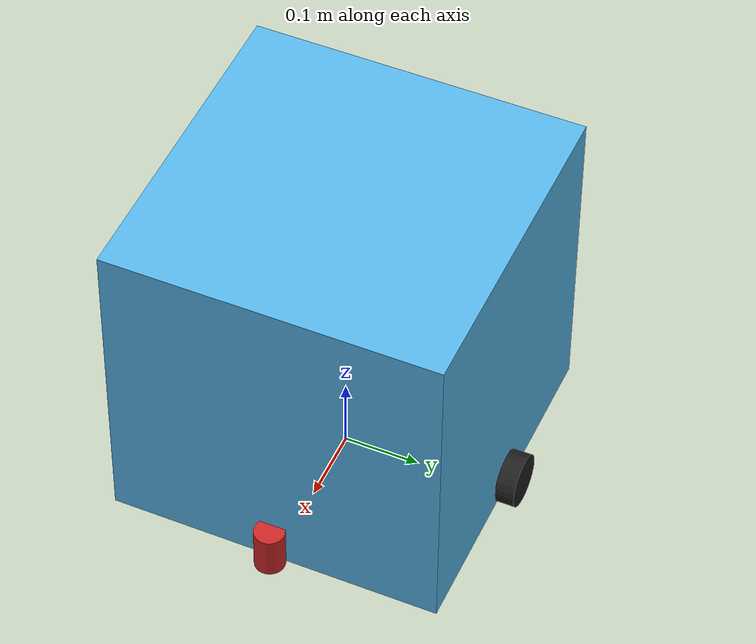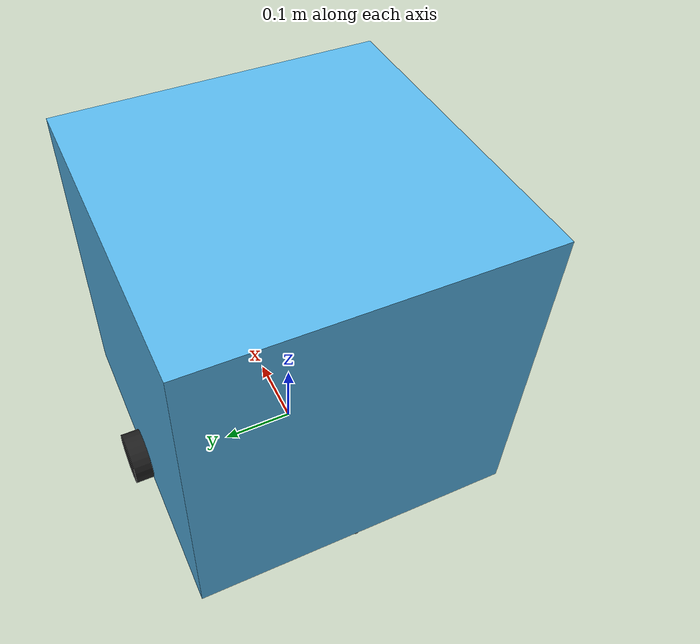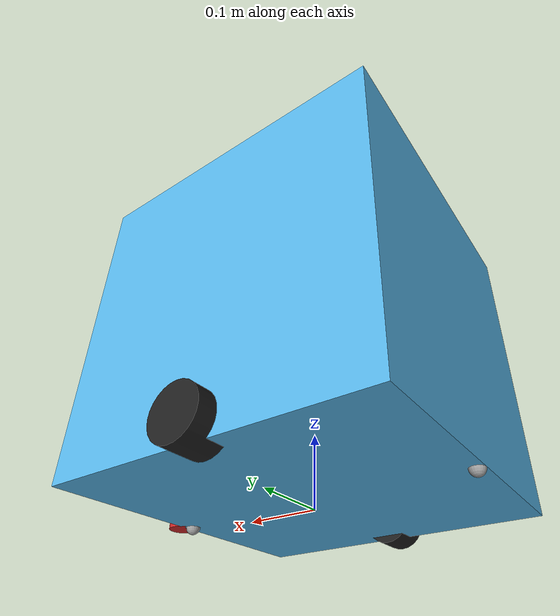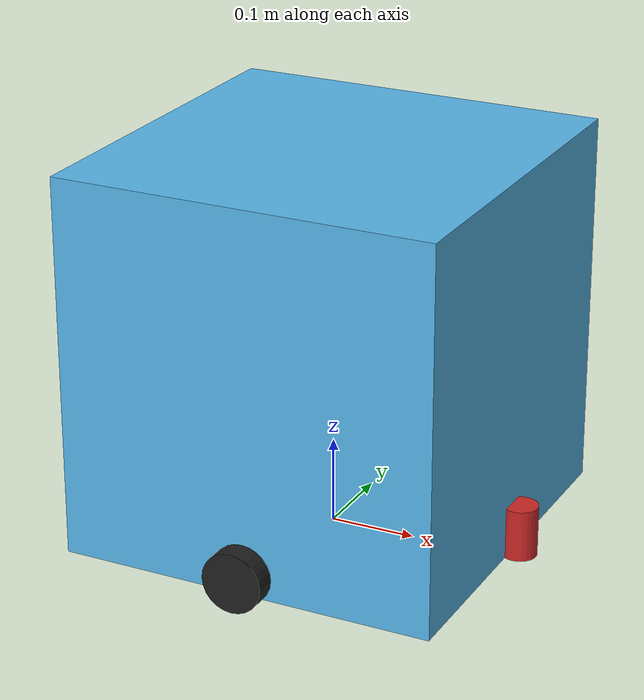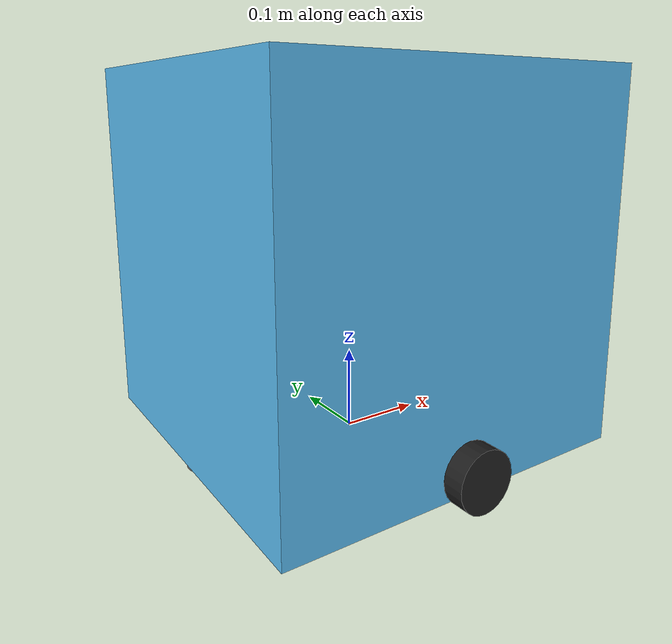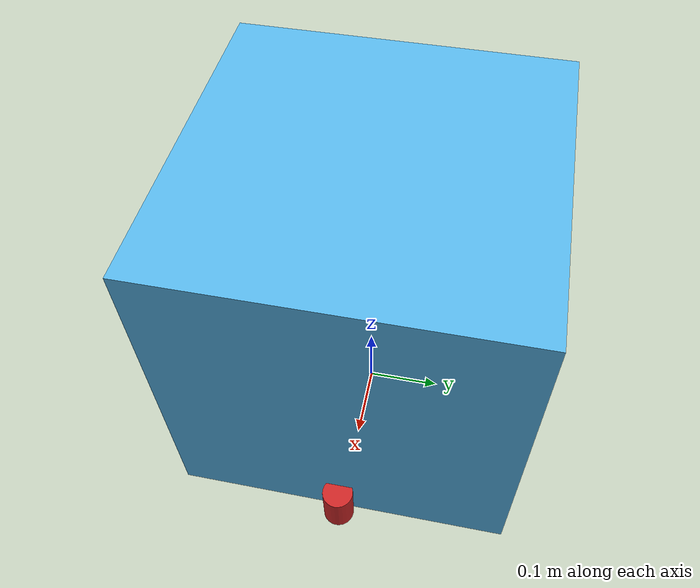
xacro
<?xml version="1.0" ?>
<robot name="simple_diff_drive" xmlns:xacro="http://ros.org/wiki/xacro">

 <xacro:include filename="$(find nhk2021_simulator)/urdf/body.urdf.xacro" />
 <xacro:include filename="$(find nhk2021_simulator)/urdf/wheel.urdf.xacro" />

 <xacro:include filename="$(find nhk2021_simulator)/urdf/lidar.urdf.xacro" />
 <xacro:include filename="$(find nhk2021_simulator)/urdf/imu.urdf.xacro" />

  <gazebo>
    <plugin name="gazebo_ros_control" filename="libgazebo_ros_control.so">
      <robotNamespace>/simple_diff_drive</robotNamespace>
      <robotSimType>gazebo_ros_control/DefaultRobotHWSim</robotSimType>
      <legacyModeNS>true</legacyModeNS>
    </plugin>
  </gazebo>

 <xacro:wheel rl="r" parent="base_link" />
 <xacro:wheel rl="l" parent="base_link" />

 <xacro:laser_macro prefix="rplidar" parent="base_link" xyz="0.23 0 0.04" />
 <xacro:imu_macro prefix="imu" parent="base_link" xyz="0.0 0 0.10" />
</robot>

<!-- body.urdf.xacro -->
<robot name="body" xmlns:xacro="http://ros.org/wiki/xacro">
<link name="base_link" />

<xacro:property name="b_m" value="5.58"/>
<xacro:property name="b_m2" value="${b_m/12}"/><!--for calculation of inertia-->
<xacro:property name="b_w" value="0.44"/>
<xacro:property name="b_h" value="0.44"/>
<xacro:property name="b_d" value="0.44"/>

<link name="body">
   <visual>
　　<geometry>
　　　<box size="${b_d} ${b_w} ${b_h}" />
     </geometry>
  </visual>
   <collision>
　　<geometry>
　　　<box size="${b_d*0.95} ${b_w*0.95} ${b_h*0.95}" />
     </geometry>
  </collision>
  <inertial>
     <origin xyz="0 0 0" rpy="0 0 0" />
     <mass value="${b_m}" />
    <inertia ixx="${b_m2*(b_h*b_h+b_w*b_w)}" ixy="0"    ixz="0"
                 iyx="0"   iyy="${b_m2*(b_h*b_h+b_d*b_d)}"  iyz="0"
		 izx="0"   izy="0"  izz="${b_m2*(b_w*b_w+b_d*b_d)}" />
  </inertial>
</link>

<joint name="body_joint" type="fixed">
<parent link="base_link" />
   <child link="body" />
   <origin xyz="0 0 0.230" rpy="0 0 0" />
</joint>

<!--support wheel-->
  <joint name="ball_joint_1" type="fixed">
    <parent link="base_link"/>
    <child  link="ball_link_1"/>
    <origin xyz="0.21 0 0.01" rpy="0 0 0"/>
  </joint>
  <link name="ball_link_1">
    <visual>
      <origin xyz="0 0 0" rpy="0 0 0" />
      <geometry>
        <sphere radius="0.01" />
      </geometry>
      <material name="gray" />
    </visual>
    <collision>
      <origin xyz="0 0 0" rpy="0 0 0" />
      <geometry>
        <sphere radius="0.01" />
      </geometry>
      <material name="gray" />
    </collision>
  </link>
  <gazebo reference="ball_link_1">
    <material>Gazebo/Gray</material>
    <mu1 value="0.5" />
    <mu2 value="0.5" />
  </gazebo>

  <joint name="ball_joint_2" type="fixed">
    <parent link="base_link"/>
    <child  link="ball_link_2"/>
    <origin xyz="-0.21 0 0.01" rpy="0 0 0"/>
  </joint>
  <link name="ball_link_2">
    <visual>
      <origin xyz="0 0 0" rpy="0 0 0" />
      <geometry>
        <sphere radius="0.01" />
      </geometry>
      <material name="gray" />
    </visual>
    <collision>
      <origin xyz="0 0 0" rpy="0 0 0" />
      <geometry>
        <sphere radius="0.01" />
      </geometry>
      <material name="gray" />
    </collision>
  </link>
  <gazebo reference="ball_link_2">
    <material>Gazebo/Gray</material>
    <mu1 value="0.5" />
    <mu2 value="0.5" />
  </gazebo>

</robot>

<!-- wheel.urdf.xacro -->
<robot name="wheel" xmlns:xacro="http://ros.org/wiki/xacro" >

<xacro:property name="PI" value="3.1415926535897931"/>
<xacro:property name="wheel_radius" value="0.035"/>
<xacro:property name="wheel_height" value="0.05"/>
<xacro:property name="wheel_mass" value="0.50"/>

<xacro:macro name="wheel" params="rl parent">
<link name="wheel_${rl}">
<visual>
  <geometry>
     <cylinder length="${wheel_height}" radius="${wheel_radius}" />
  </geometry>
</visual>
   <collision>
　　<geometry>
　　　<cylinder radius="${wheel_radius}" length="${wheel_height}" />
     </geometry>
  </collision>
  <inertial>
     <origin xyz="0 0 0" rpy="0 0 0" />
     <mass value="${wheel_mass}" />
    <inertia ixx="${wheel_mass*(3*wheel_radius*wheel_radius+wheel_height*wheel_height)/12}"
        ixy="0"  ixz="0"
        iyx="0"  iyy="${wheel_mass*(3*wheel_radius*wheel_radius+wheel_height*wheel_height)/12}"
         iyz="0"
         izx="0"  izy="0"  izz="${wheel_mass*(wheel_radius*wheel_radius)/2}" />
  </inertial>
</link>
<joint name="wheel_${rl}_joint" type="continuous">
  <parent link="${parent}" />
  <child link="wheel_${rl}" />
  <xacro:if value="${rl == 'r'}">
    <origin xyz="0 -0.22 0.035" rpy="${PI/2} 0 0" /><!--z: position from base_link - position from body-->
  </xacro:if>
  <xacro:if value="${rl == 'l'}">
     <origin xyz="0 0.22 0.035" rpy="${PI/2} 0 0" />
  </xacro:if>
  <axis xyz="0 0 -1" />
  <limit effort="6.0" velocity="12.0" /><!-- maximum torqe(<8.82), maximum velocity-->
  <dynamics damping="0.1"/>
</joint>

<gazebo reference="wheel_${rl}">
    <material>Gazebo/Black</material>
    <mu1 value="3.0" /><!--friction-->
    <mu2 value="3.0" />
</gazebo>

    <transmission name="wheel_${rl}_trans" type="SimpleTransmission">
      <type>transmission_interface/SimpleTransmission</type>
        <actuator name="wheel_${rl}_motor">
          <hardwareInterface>hardware_interface/VelocityJointInterface</hardwareInterface>
          <mechanicalReduction>1</mechanicalReduction>
        </actuator>
      <joint name="wheel_${rl}_joint">
        <hardwareInterface>hardware_interface/VelocityJointInterface</hardwareInterface>
      </joint>
    </transmission>

</xacro:macro>
</robot>

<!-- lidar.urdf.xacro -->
<robot name="lidar" xmlns:xacro="http://ros.org/wiki/xacro">
  <xacro:macro name="laser_macro" params="parent prefix xyz">
    <joint name="${prefix}_joint" type="fixed">
      <parent link="${parent}"/>
      <child  link="${prefix}_link"/>
      <origin xyz="${xyz}" rpy="0 0 0"/>
    </joint>
    <link name="${prefix}_link">
      <visual>
        <origin xyz="0 0 0" rpy="0 0 0" />
        <geometry>
          <cylinder radius="0.02" length="0.06" />
        </geometry>
        <material name="red" />
      </visual>
      <collision>
        <origin xyz="0 0 0" rpy="0 0 0"/>
        <geometry>
          <cylinder radius="0.02" length="0.06" />
        </geometry>
      </collision>
    </link>
    <gazebo reference="${prefix}_link">
      <material>Gazebo/Red</material>
      <sensor type="ray" name="${prefix}">
        <pose>0 0 0 0 0 0</pose>
        <visualize>false</visualize>
        <update_rate>10</update_rate>
        <ray>
          <scan>
            <horizontal>
              <samples>400</samples>
              <resolution>1</resolution>
              <min_angle>${radians(-180)}</min_angle>
              <max_angle>${radians(180)}</max_angle>
            </horizontal>
          </scan>
          <range>
            <min>0.10</min>
            <max>20.0</max>
            <resolution>0.01</resolution>
          </range>
          <noise>
            <type>gaussian</type>
            <mean>0.0</mean>
            <stddev>0.01</stddev>
          </noise>
        </ray>
        <plugin name="gazebo_ros_lidar_controller" filename="libgazebo_ros_laser.so">
          <topicName>/${prefix}/scan</topicName>
          <frameName>${prefix}_link</frameName>
        </plugin>
      </sensor>
    </gazebo>
  </xacro:macro>
</robot>

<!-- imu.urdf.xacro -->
<robot name="imu" xmlns:xacro="http://ros.org/wiki/xacro">
<xacro:macro name="imu_macro" params="parent prefix xyz">
    <joint name="imu_joint" type="fixed">
      <parent link="${parent}"/>
      <child  link="${prefix}_link"/>
      <origin xyz="${xyz}" rpy="0 0 0"/>
    </joint>
    <link name="${prefix}_link"/>
    <gazebo reference="${prefix}_link">
      <gravity>true</gravity>
      <sensor name="imu_sensor" type="imu">
        <always_on>true</always_on>
        <update_rate>100</update_rate>
        <visualize>true</visualize>
        <topic>data</topic>
        <plugin filename="libgazebo_ros_imu_sensor.so" name="imu_plugin">
          <topicName>${prefix}</topicName><!--${prefix}/data-->
          <bodyName>${prefix}_link</bodyName>
          <updateRateHZ>10.0</updateRateHZ>
          <gaussianNoise>0.0</gaussianNoise>
          <xyzOffset>0 0 0</xyzOffset>
          <rpyOffset>0 0 0</rpyOffset>
          <frameName>${prefix}_link</frameName>
        </plugin>
        <pose>0 0 0 0 0 0</pose>
      </sensor>
    </gazebo>
  </xacro:macro>
</robot>
